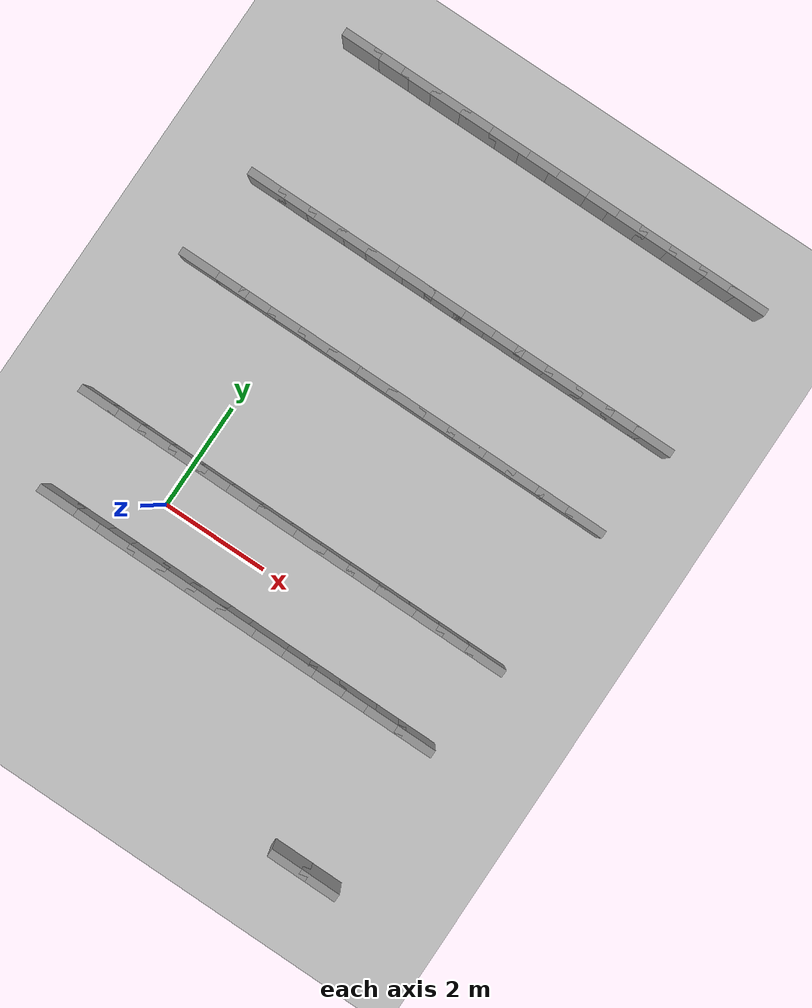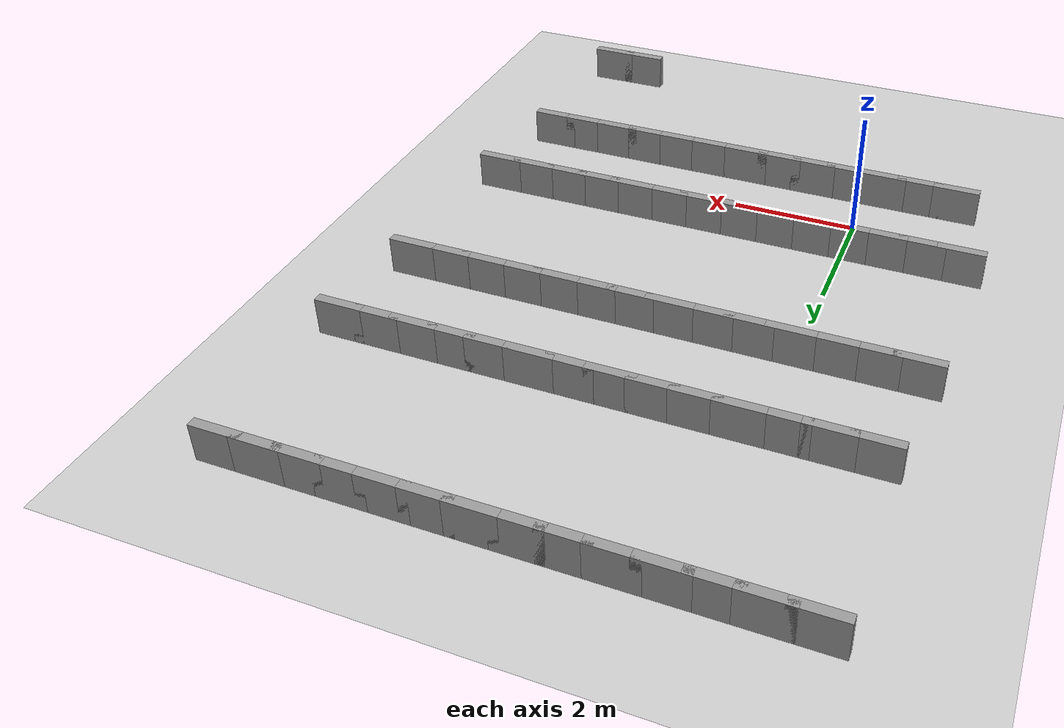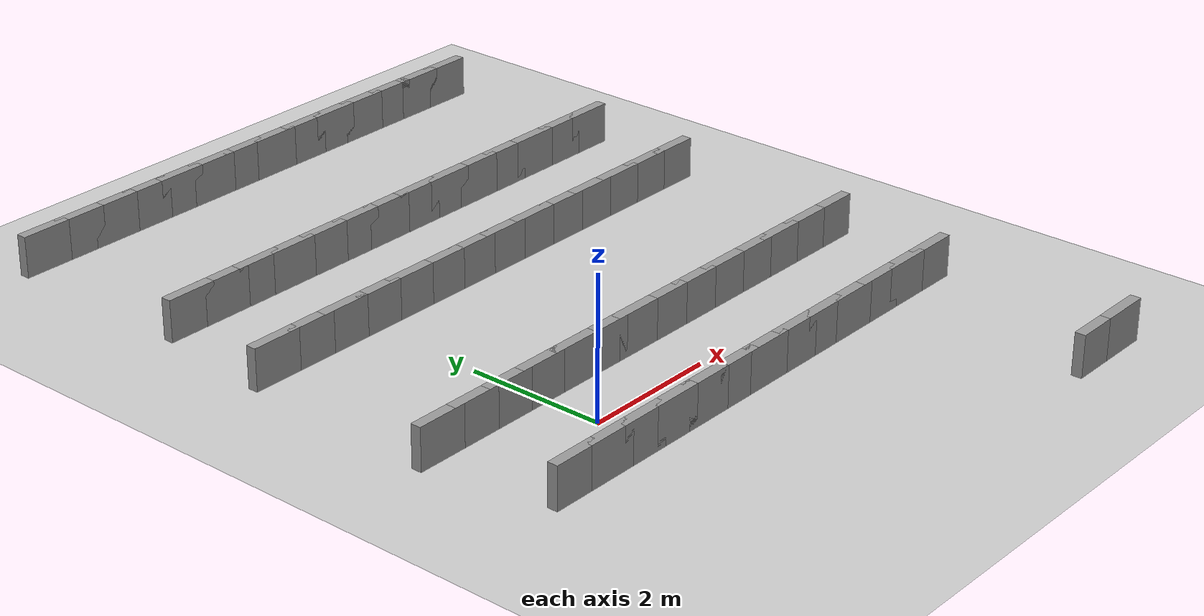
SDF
<sdf version="1.7">
 <world name="default">
  <model name="ground_plane">
   <static>1</static>
   <link name="link">
    <collision name="collision">
     <geometry><plane><normal>0 0 1</normal><size>100 100</size></plane></geometry>
     <surface><friction><ode><mu>100</mu><mu2>50</mu2></ode></friction></surface>
    </collision>
    <visual name="visual">
     <cast_shadows>0</cast_shadows>
     <geometry><plane><normal>0 0 1</normal><size>100 100</size></plane></geometry>
     <material>
      <script><uri>file://media/materials/scripts/gazebo.material</uri><name>Gazebo/Grey</name></script>
     </material>
    </visual>
   </link>
  </model>
  <model name="rand_serp_00">
   <link name="Wall_15">
    <collision name="Wall_15_Collision">
     <geometry><box><size>0.7500 0.1500 0.6000</size></box></geometry>
     <pose>0 0 0.3000 0 -0 0</pose>
    </collision>
    <visual name="Wall_15_Visual">
     <pose>0 0 0.3000 0 -0 0</pose>
     <geometry><box><size>0.7500 0.1500 0.6000</size></box></geometry>
     <material>
      <script><uri>file://media/materials/scripts/gazebo.material</uri><name>Gazebo/Grey</name></script>
      <ambient>1 1 1 1</ambient>
     </material>
    </visual>
    <pose>-1.5433 8.3501 0 0 -0 0.00000</pose>
   </link>
   <link name="Wall_16">
    <collision name="Wall_16_Collision">
     <geometry><box><size>0.7500 0.1500 0.6000</size></box></geometry>
     <pose>0 0 0.3000 0 -0 0</pose>
    </collision>
    <visual name="Wall_16_Visual">
     <pose>0 0 0.3000 0 -0 0</pose>
     <geometry><box><size>0.7500 0.1500 0.6000</size></box></geometry>
     <material>
      <script><uri>file://media/materials/scripts/gazebo.material</uri><name>Gazebo/Grey</name></script>
      <ambient>1 1 1 1</ambient>
     </material>
    </visual>
    <pose>-0.9433 8.3501 0 0 -0 0.00000</pose>
   </link>
   <link name="Wall_17">
    <collision name="Wall_17_Collision">
     <geometry><box><size>0.7500 0.1500 0.6000</size></box></geometry>
     <pose>0 0 0.3000 0 -0 0</pose>
    </collision>
    <visual name="Wall_17_Visual">
     <pose>0 0 0.3000 0 -0 0</pose>
     <geometry><box><size>0.7500 0.1500 0.6000</size></box></geometry>
     <material>
      <script><uri>file://media/materials/scripts/gazebo.material</uri><name>Gazebo/Grey</name></script>
      <ambient>1 1 1 1</ambient>
     </material>
    </visual>
    <pose>-0.3433 8.3501 0 0 -0 0.00000</pose>
   </link>
   <link name="Wall_18">
    <collision name="Wall_18_Collision">
     <geometry><box><size>0.7500 0.1500 0.6000</size></box></geometry>
     <pose>0 0 0.3000 0 -0 0</pose>
    </collision>
    <visual name="Wall_18_Visual">
     <pose>0 0 0.3000 0 -0 0</pose>
     <geometry><box><size>0.7500 0.1500 0.6000</size></box></geometry>
     <material>
      <script><uri>file://media/materials/scripts/gazebo.material</uri><name>Gazebo/Grey</name></script>
      <ambient>1 1 1 1</ambient>
     </material>
    </visual>
    <pose>0.2567 8.3501 0 0 -0 0.00000</pose>
   </link>
   <link name="Wall_19">
    <collision name="Wall_19_Collision">
     <geometry><box><size>0.7500 0.1500 0.6000</size></box></geometry>
     <pose>0 0 0.3000 0 -0 0</pose>
    </collision>
    <visual name="Wall_19_Visual">
     <pose>0 0 0.3000 0 -0 0</pose>
     <geometry><box><size>0.7500 0.1500 0.6000</size></box></geometry>
     <material>
      <script><uri>file://media/materials/scripts/gazebo.material</uri><name>Gazebo/Grey</name></script>
      <ambient>1 1 1 1</ambient>
     </material>
    </visual>
    <pose>0.8567 8.3501 0 0 -0 0.00000</pose>
   </link>
   <link name="Wall_20">
    <collision name="Wall_20_Collision">
     <geometry><box><size>0.7500 0.1500 0.6000</size></box></geometry>
     <pose>0 0 0.3000 0 -0 0</pose>
    </collision>
    <visual name="Wall_20_Visual">
     <pose>0 0 0.3000 0 -0 0</pose>
     <geometry><box><size>0.7500 0.1500 0.6000</size></box></geometry>
     <material>
      <script><uri>file://media/materials/scripts/gazebo.material</uri><name>Gazebo/Grey</name></script>
      <ambient>1 1 1 1</ambient>
     </material>
    </visual>
    <pose>1.4567 8.3501 0 0 -0 0.00000</pose>
   </link>
   <link name="Wall_21">
    <collision name="Wall_21_Collision">
     <geometry><box><size>0.7500 0.1500 0.6000</size></box></geometry>
     <pose>0 0 0.3000 0 -0 0</pose>
    </collision>
    <visual name="Wall_21_Visual">
     <pose>0 0 0.3000 0 -0 0</pose>
     <geometry><box><size>0.7500 0.1500 0.6000</size></box></geometry>
     <material>
      <script><uri>file://media/materials/scripts/gazebo.material</uri><name>Gazebo/Grey</name></script>
      <ambient>1 1 1 1</ambient>
     </material>
    </visual>
    <pose>2.0567 8.3501 0 0 -0 0.00000</pose>
   </link>
   <link name="Wall_22">
    <collision name="Wall_22_Collision">
     <geometry><box><size>0.7500 0.1500 0.6000</size></box></geometry>
     <pose>0 0 0.3000 0 -0 0</pose>
    </collision>
    <visual name="Wall_22_Visual">
     <pose>0 0 0.3000 0 -0 0</pose>
     <geometry><box><size>0.7500 0.1500 0.6000</size></box></geometry>
     <material>
      <script><uri>file://media/materials/scripts/gazebo.material</uri><name>Gazebo/Grey</name></script>
      <ambient>1 1 1 1</ambient>
     </material>
    </visual>
    <pose>2.6567 8.3501 0 0 -0 0.00000</pose>
   </link>
   <link name="Wall_23">
    <collision name="Wall_23_Collision">
     <geometry><box><size>0.7500 0.1500 0.6000</size></box></geometry>
     <pose>0 0 0.3000 0 -0 0</pose>
    </collision>
    <visual name="Wall_23_Visual">
     <pose>0 0 0.3000 0 -0 0</pose>
     <geometry><box><size>0.7500 0.1500 0.6000</size></box></geometry>
     <material>
      <script><uri>file://media/materials/scripts/gazebo.material</uri><name>Gazebo/Grey</name></script>
      <ambient>1 1 1 1</ambient>
     </material>
    </visual>
    <pose>3.2567 8.3501 0 0 -0 0.00000</pose>
   </link>
   <link name="Wall_24">
    <collision name="Wall_24_Collision">
     <geometry><box><size>0.7500 0.1500 0.6000</size></box></geometry>
     <pose>0 0 0.3000 0 -0 0</pose>
    </collision>
    <visual name="Wall_24_Visual">
     <pose>0 0 0.3000 0 -0 0</pose>
     <geometry><box><size>0.7500 0.1500 0.6000</size></box></geometry>
     <material>
      <script><uri>file://media/materials/scripts/gazebo.material</uri><name>Gazebo/Grey</name></script>
      <ambient>1 1 1 1</ambient>
     </material>
    </visual>
    <pose>3.8567 8.3501 0 0 -0 0.00000</pose>
   </link>
   <link name="Wall_25">
    <collision name="Wall_25_Collision">
     <geometry><box><size>0.7500 0.1500 0.6000</size></box></geometry>
     <pose>0 0 0.3000 0 -0 0</pose>
    </collision>
    <visual name="Wall_25_Visual">
     <pose>0 0 0.3000 0 -0 0</pose>
     <geometry><box><size>0.7500 0.1500 0.6000</size></box></geometry>
     <material>
      <script><uri>file://media/materials/scripts/gazebo.material</uri><name>Gazebo/Grey</name></script>
      <ambient>1 1 1 1</ambient>
     </material>
    </visual>
    <pose>4.4567 8.3501 0 0 -0 0.00000</pose>
   </link>
   <link name="Wall_26">
    <collision name="Wall_26_Collision">
     <geometry><box><size>0.7500 0.1500 0.6000</size></box></geometry>
     <pose>0 0 0.3000 0 -0 0</pose>
    </collision>
    <visual name="Wall_26_Visual">
     <pose>0 0 0.3000 0 -0 0</pose>
     <geometry><box><size>0.7500 0.1500 0.6000</size></box></geometry>
     <material>
      <script><uri>file://media/materials/scripts/gazebo.material</uri><name>Gazebo/Grey</name></script>
      <ambient>1 1 1 1</ambient>
     </material>
    </visual>
    <pose>5.0567 8.3501 0 0 -0 0.00000</pose>
   </link>
   <link name="Wall_27">
    <collision name="Wall_27_Collision">
     <geometry><box><size>0.7500 0.1500 0.6000</size></box></geometry>
     <pose>0 0 0.3000 0 -0 0</pose>
    </collision>
    <visual name="Wall_27_Visual">
     <pose>0 0 0.3000 0 -0 0</pose>
     <geometry><box><size>0.7500 0.1500 0.6000</size></box></geometry>
     <material>
      <script><uri>file://media/materials/scripts/gazebo.material</uri><name>Gazebo/Grey</name></script>
      <ambient>1 1 1 1</ambient>
     </material>
    </visual>
    <pose>5.6567 8.3501 0 0 -0 0.00000</pose>
   </link>
   <link name="Wall_28">
    <collision name="Wall_28_Collision">
     <geometry><box><size>0.7500 0.1500 0.6000</size></box></geometry>
     <pose>0 0 0.3000 0 -0 0</pose>
    </collision>
    <visual name="Wall_28_Visual">
     <pose>0 0 0.3000 0 -0 0</pose>
     <geometry><box><size>0.7500 0.1500 0.6000</size></box></geometry>
     <material>
      <script><uri>file://media/materials/scripts/gazebo.material</uri><name>Gazebo/Grey</name></script>
      <ambient>1 1 1 1</ambient>
     </material>
    </visual>
    <pose>6.2567 8.3501 0 0 -0 0.00000</pose>
   </link>
   <link name="Wall_61">
    <collision name="Wall_61_Collision">
     <geometry><box><size>0.7500 0.1500 0.6000</size></box></geometry>
     <pose>0 0 0.3000 0 -0 0</pose>
    </collision>
    <visual name="Wall_61_Visual">
     <pose>0 0 0.3000 0 -0 0</pose>
     <geometry><box><size>0.7500 0.1500 0.6000</size></box></geometry>
     <material>
      <script><uri>file://media/materials/scripts/gazebo.material</uri><name>Gazebo/Grey</name></script>
      <ambient>1 1 1 1</ambient>
     </material>
    </visual>
    <pose>5.9596 0.8823 0 0 -0 3.14159</pose>
   </link>
   <link name="Wall_62">
    <collision name="Wall_62_Collision">
     <geometry><box><size>0.7500 0.1500 0.6000</size></box></geometry>
     <pose>0 0 0.3000 0 -0 0</pose>
    </collision>
    <visual name="Wall_62_Visual">
     <pose>0 0 0.3000 0 -0 0</pose>
     <geometry><box><size>0.7500 0.1500 0.6000</size></box></geometry>
     <material>
      <script><uri>file://media/materials/scripts/gazebo.material</uri><name>Gazebo/Grey</name></script>
      <ambient>1 1 1 1</ambient>
     </material>
    </visual>
    <pose>5.3596 0.8823 0 0 -0 3.14159</pose>
   </link>
   <link name="Wall_63">
    <collision name="Wall_63_Collision">
     <geometry><box><size>0.7500 0.1500 0.6000</size></box></geometry>
     <pose>0 0 0.3000 0 -0 0</pose>
    </collision>
    <visual name="Wall_63_Visual">
     <pose>0 0 0.3000 0 -0 0</pose>
     <geometry><box><size>0.7500 0.1500 0.6000</size></box></geometry>
     <material>
      <script><uri>file://media/materials/scripts/gazebo.material</uri><name>Gazebo/Grey</name></script>
      <ambient>1 1 1 1</ambient>
     </material>
    </visual>
    <pose>4.7596 0.8823 0 0 -0 3.14159</pose>
   </link>
   <link name="Wall_64">
    <collision name="Wall_64_Collision">
     <geometry><box><size>0.7500 0.1500 0.6000</size></box></geometry>
     <pose>0 0 0.3000 0 -0 0</pose>
    </collision>
    <visual name="Wall_64_Visual">
     <pose>0 0 0.3000 0 -0 0</pose>
     <geometry><box><size>0.7500 0.1500 0.6000</size></box></geometry>
     <material>
      <script><uri>file://media/materials/scripts/gazebo.material</uri><name>Gazebo/Grey</name></script>
      <ambient>1 1 1 1</ambient>
     </material>
    </visual>
    <pose>4.1596 0.8823 0 0 -0 3.14159</pose>
   </link>
   <link name="Wall_65">
    <collision name="Wall_65_Collision">
     <geometry><box><size>0.7500 0.1500 0.6000</size></box></geometry>
     <pose>0 0 0.3000 0 -0 0</pose>
    </collision>
    <visual name="Wall_65_Visual">
     <pose>0 0 0.3000 0 -0 0</pose>
     <geometry><box><size>0.7500 0.1500 0.6000</size></box></geometry>
     <material>
      <script><uri>file://media/materials/scripts/gazebo.material</uri><name>Gazebo/Grey</name></script>
      <ambient>1 1 1 1</ambient>
     </material>
    </visual>
    <pose>3.5596 0.8823 0 0 -0 3.14159</pose>
   </link>
   <link name="Wall_66">
    <collision name="Wall_66_Collision">
     <geometry><box><size>0.7500 0.1500 0.6000</size></box></geometry>
     <pose>0 0 0.3000 0 -0 0</pose>
    </collision>
    <visual name="Wall_66_Visual">
     <pose>0 0 0.3000 0 -0 0</pose>
     <geometry><box><size>0.7500 0.1500 0.6000</size></box></geometry>
     <material>
      <script><uri>file://media/materials/scripts/gazebo.material</uri><name>Gazebo/Grey</name></script>
      <ambient>1 1 1 1</ambient>
     </material>
    </visual>
    <pose>2.9596 0.8823 0 0 -0 3.14159</pose>
   </link>
   <link name="Wall_67">
    <collision name="Wall_67_Collision">
     <geometry><box><size>0.7500 0.1500 0.6000</size></box></geometry>
     <pose>0 0 0.3000 0 -0 0</pose>
    </collision>
    <visual name="Wall_67_Visual">
     <pose>0 0 0.3000 0 -0 0</pose>
     <geometry><box><size>0.7500 0.1500 0.6000</size></box></geometry>
     <material>
      <script><uri>file://media/materials/scripts/gazebo.material</uri><name>Gazebo/Grey</name></script>
      <ambient>1 1 1 1</ambient>
     </material>
    </visual>
    <pose>2.3596 0.8823 0 0 -0 3.14159</pose>
   </link>
   <link name="Wall_68">
    <collision name="Wall_68_Collision">
     <geometry><box><size>0.7500 0.1500 0.6000</size></box></geometry>
     <pose>0 0 0.3000 0 -0 0</pose>
    </collision>
    <visual name="Wall_68_Visual">
     <pose>0 0 0.3000 0 -0 0</pose>
     <geometry><box><size>0.7500 0.1500 0.6000</size></box></geometry>
     <material>
      <script><uri>file://media/materials/scripts/gazebo.material</uri><name>Gazebo/Grey</name></script>
      <ambient>1 1 1 1</ambient>
     </material>
    </visual>
    <pose>1.7596 0.8823 0 0 -0 3.14159</pose>
   </link>
   <link name="Wall_69">
    <collision name="Wall_69_Collision">
     <geometry><box><size>0.7500 0.1500 0.6000</size></box></geometry>
     <pose>0 0 0.3000 0 -0 0</pose>
    </collision>
    <visual name="Wall_69_Visual">
     <pose>0 0 0.3000 0 -0 0</pose>
     <geometry><box><size>0.7500 0.1500 0.6000</size></box></geometry>
     <material>
      <script><uri>file://media/materials/scripts/gazebo.material</uri><name>Gazebo/Grey</name></script>
      <ambient>1 1 1 1</ambient>
     </material>
    </visual>
    <pose>1.1596 0.8823 0 0 -0 3.14159</pose>
   </link>
   <link name="Wall_70">
    <collision name="Wall_70_Collision">
     <geometry><box><size>0.7500 0.1500 0.6000</size></box></geometry>
     <pose>0 0 0.3000 0 -0 0</pose>
    </collision>
    <visual name="Wall_70_Visual">
     <pose>0 0 0.3000 0 -0 0</pose>
     <geometry><box><size>0.7500 0.1500 0.6000</size></box></geometry>
     <material>
      <script><uri>file://media/materials/scripts/gazebo.material</uri><name>Gazebo/Grey</name></script>
      <ambient>1 1 1 1</ambient>
     </material>
    </visual>
    <pose>0.5596 0.8823 0 0 -0 3.14159</pose>
   </link>
   <link name="Wall_71">
    <collision name="Wall_71_Collision">
     <geometry><box><size>0.7500 0.1500 0.6000</size></box></geometry>
     <pose>0 0 0.3000 0 -0 0</pose>
    </collision>
    <visual name="Wall_71_Visual">
     <pose>0 0 0.3000 0 -0 0</pose>
     <geometry><box><size>0.7500 0.1500 0.6000</size></box></geometry>
     <material>
      <script><uri>file://media/materials/scripts/gazebo.material</uri><name>Gazebo/Grey</name></script>
      <ambient>1 1 1 1</ambient>
     </material>
    </visual>
    <pose>-0.0404 0.8823 0 0 -0 3.14159</pose>
   </link>
   <link name="Wall_72">
    <collision name="Wall_72_Collision">
     <geometry><box><size>0.7500 0.1500 0.6000</size></box></geometry>
     <pose>0 0 0.3000 0 -0 0</pose>
    </collision>
    <visual name="Wall_72_Visual">
     <pose>0 0 0.3000 0 -0 0</pose>
     <geometry><box><size>0.7500 0.1500 0.6000</size></box></geometry>
     <material>
      <script><uri>file://media/materials/scripts/gazebo.material</uri><name>Gazebo/Grey</name></script>
      <ambient>1 1 1 1</ambient>
     </material>
    </visual>
    <pose>-0.6404 0.8823 0 0 -0 3.14159</pose>
   </link>
   <link name="Wall_73">
    <collision name="Wall_73_Collision">
     <geometry><box><size>0.7500 0.1500 0.6000</size></box></geometry>
     <pose>0 0 0.3000 0 -0 0</pose>
    </collision>
    <visual name="Wall_73_Visual">
     <pose>0 0 0.3000 0 -0 0</pose>
     <geometry><box><size>0.7500 0.1500 0.6000</size></box></geometry>
     <material>
      <script><uri>file://media/materials/scripts/gazebo.material</uri><name>Gazebo/Grey</name></script>
      <ambient>1 1 1 1</ambient>
     </material>
    </visual>
    <pose>-1.2404 0.8823 0 0 -0 3.14159</pose>
   </link>
   <link name="Wall_74">
    <collision name="Wall_74_Collision">
     <geometry><box><size>0.7500 0.1500 0.6000</size></box></geometry>
     <pose>0 0 0.3000 0 -0 0</pose>
    </collision>
    <visual name="Wall_74_Visual">
     <pose>0 0 0.3000 0 -0 0</pose>
     <geometry><box><size>0.7500 0.1500 0.6000</size></box></geometry>
     <material>
      <script><uri>file://media/materials/scripts/gazebo.material</uri><name>Gazebo/Grey</name></script>
      <ambient>1 1 1 1</ambient>
     </material>
    </visual>
    <pose>-1.8404 0.8823 0 0 -0 3.14159</pose>
   </link>
   <link name="Wall_107">
    <collision name="Wall_107_Collision">
     <geometry><box><size>0.7500 0.1500 0.6000</size></box></geometry>
     <pose>0 0 0.3000 0 -0 0</pose>
    </collision>
    <visual name="Wall_107_Visual">
     <pose>0 0 0.3000 0 -0 0</pose>
     <geometry><box><size>0.7500 0.1500 0.6000</size></box></geometry>
     <material>
      <script><uri>file://media/materials/scripts/gazebo.material</uri><name>Gazebo/Grey</name></script>
      <ambient>1 1 1 1</ambient>
     </material>
    </visual>
    <pose>-1.4747 -0.8823 0 0 -0 0.00000</pose>
   </link>
   <link name="Wall_108">
    <collision name="Wall_108_Collision">
     <geometry><box><size>0.7500 0.1500 0.6000</size></box></geometry>
     <pose>0 0 0.3000 0 -0 0</pose>
    </collision>
    <visual name="Wall_108_Visual">
     <pose>0 0 0.3000 0 -0 0</pose>
     <geometry><box><size>0.7500 0.1500 0.6000</size></box></geometry>
     <material>
      <script><uri>file://media/materials/scripts/gazebo.material</uri><name>Gazebo/Grey</name></script>
      <ambient>1 1 1 1</ambient>
     </material>
    </visual>
    <pose>-0.8747 -0.8823 0 0 -0 0.00000</pose>
   </link>
   <link name="Wall_109">
    <collision name="Wall_109_Collision">
     <geometry><box><size>0.7500 0.1500 0.6000</size></box></geometry>
     <pose>0 0 0.3000 0 -0 0</pose>
    </collision>
    <visual name="Wall_109_Visual">
     <pose>0 0 0.3000 0 -0 0</pose>
     <geometry><box><size>0.7500 0.1500 0.6000</size></box></geometry>
     <material>
      <script><uri>file://media/materials/scripts/gazebo.material</uri><name>Gazebo/Grey</name></script>
      <ambient>1 1 1 1</ambient>
     </material>
    </visual>
    <pose>-0.2747 -0.8823 0 0 -0 0.00000</pose>
   </link>
   <link name="Wall_110">
    <collision name="Wall_110_Collision">
     <geometry><box><size>0.7500 0.1500 0.6000</size></box></geometry>
     <pose>0 0 0.3000 0 -0 0</pose>
    </collision>
    <visual name="Wall_110_Visual">
     <pose>0 0 0.3000 0 -0 0</pose>
     <geometry><box><size>0.7500 0.1500 0.6000</size></box></geometry>
     <material>
      <script><uri>file://media/materials/scripts/gazebo.material</uri><name>Gazebo/Grey</name></script>
      <ambient>1 1 1 1</ambient>
     </material>
    </visual>
    <pose>0.3253 -0.8823 0 0 -0 0.00000</pose>
   </link>
   <link name="Wall_111">
    <collision name="Wall_111_Collision">
     <geometry><box><size>0.7500 0.1500 0.6000</size></box></geometry>
     <pose>0 0 0.3000 0 -0 0</pose>
    </collision>
    <visual name="Wall_111_Visual">
     <pose>0 0 0.3000 0 -0 0</pose>
     <geometry><box><size>0.7500 0.1500 0.6000</size></box></geometry>
     <material>
      <script><uri>file://media/materials/scripts/gazebo.material</uri><name>Gazebo/Grey</name></script>
      <ambient>1 1 1 1</ambient>
     </material>
    </visual>
    <pose>0.9253 -0.8823 0 0 -0 0.00000</pose>
   </link>
   <link name="Wall_112">
    <collision name="Wall_112_Collision">
     <geometry><box><size>0.7500 0.1500 0.6000</size></box></geometry>
     <pose>0 0 0.3000 0 -0 0</pose>
    </collision>
    <visual name="Wall_112_Visual">
     <pose>0 0 0.3000 0 -0 0</pose>
     <geometry><box><size>0.7500 0.1500 0.6000</size></box></geometry>
     <material>
      <script><uri>file://media/materials/scripts/gazebo.material</uri><name>Gazebo/Grey</name></script>
      <ambient>1 1 1 1</ambient>
     </material>
    </visual>
    <pose>1.5253 -0.8823 0 0 -0 0.00000</pose>
   </link>
   <link name="Wall_113">
    <collision name="Wall_113_Collision">
     <geometry><box><size>0.7500 0.1500 0.6000</size></box></geometry>
     <pose>0 0 0.3000 0 -0 0</pose>
    </collision>
    <visual name="Wall_113_Visual">
     <pose>0 0 0.3000 0 -0 0</pose>
     <geometry><box><size>0.7500 0.1500 0.6000</size></box></geometry>
     <material>
      <script><uri>file://media/materials/scripts/gazebo.material</uri><name>Gazebo/Grey</name></script>
      <ambient>1 1 1 1</ambient>
     </material>
    </visual>
    <pose>2.1253 -0.8823 0 0 -0 0.00000</pose>
   </link>
   <link name="Wall_114">
    <collision name="Wall_114_Collision">
     <geometry><box><size>0.7500 0.1500 0.6000</size></box></geometry>
     <pose>0 0 0.3000 0 -0 0</pose>
    </collision>
    <visual name="Wall_114_Visual">
     <pose>0 0 0.3000 0 -0 0</pose>
     <geometry><box><size>0.7500 0.1500 0.6000</size></box></geometry>
     <material>
      <script><uri>file://media/materials/scripts/gazebo.material</uri><name>Gazebo/Grey</name></script>
      <ambient>1 1 1 1</ambient>
     </material>
    </visual>
    <pose>2.7253 -0.8823 0 0 -0 0.00000</pose>
   </link>
   <link name="Wall_115">
    <collision name="Wall_115_Collision">
     <geometry><box><size>0.7500 0.1500 0.6000</size></box></geometry>
     <pose>0 0 0.3000 0 -0 0</pose>
    </collision>
    <visual name="Wall_115_Visual">
     <pose>0 0 0.3000 0 -0 0</pose>
     <geometry><box><size>0.7500 0.1500 0.6000</size></box></geometry>
     <material>
      <script><uri>file://media/materials/scripts/gazebo.material</uri><name>Gazebo/Grey</name></script>
      <ambient>1 1 1 1</ambient>
     </material>
    </visual>
    <pose>3.3253 -0.8823 0 0 -0 0.00000</pose>
   </link>
   <link name="Wall_116">
    <collision name="Wall_116_Collision">
     <geometry><box><size>0.7500 0.1500 0.6000</size></box></geometry>
     <pose>0 0 0.3000 0 -0 0</pose>
    </collision>
    <visual name="Wall_116_Visual">
     <pose>0 0 0.3000 0 -0 0</pose>
     <geometry><box><size>0.7500 0.1500 0.6000</size></box></geometry>
     <material>
      <script><uri>file://media/materials/scripts/gazebo.material</uri><name>Gazebo/Grey</name></script>
      <ambient>1 1 1 1</ambient>
     </material>
    </visual>
    <pose>3.9253 -0.8823 0 0 -0 0.00000</pose>
   </link>
   <link name="Wall_117">
    <collision name="Wall_117_Collision">
     <geometry><box><size>0.7500 0.1500 0.6000</size></box></geometry>
     <pose>0 0 0.3000 0 -0 0</pose>
    </collision>
    <visual name="Wall_117_Visual">
     <pose>0 0 0.3000 0 -0 0</pose>
     <geometry><box><size>0.7500 0.1500 0.6000</size></box></geometry>
     <material>
      <script><uri>file://media/materials/scripts/gazebo.material</uri><name>Gazebo/Grey</name></script>
      <ambient>1 1 1 1</ambient>
     </material>
    </visual>
    <pose>4.5253 -0.8823 0 0 -0 0.00000</pose>
   </link>
   <link name="Wall_118">
    <collision name="Wall_118_Collision">
     <geometry><box><size>0.7500 0.1500 0.6000</size></box></geometry>
     <pose>0 0 0.3000 0 -0 0</pose>
    </collision>
    <visual name="Wall_118_Visual">
     <pose>0 0 0.3000 0 -0 0</pose>
     <geometry><box><size>0.7500 0.1500 0.6000</size></box></geometry>
     <material>
      <script><uri>file://media/materials/scripts/gazebo.material</uri><name>Gazebo/Grey</name></script>
      <ambient>1 1 1 1</ambient>
     </material>
    </visual>
    <pose>5.1253 -0.8823 0 0 -0 0.00000</pose>
   </link>
   <link name="Wall_119">
    <collision name="Wall_119_Collision">
     <geometry><box><size>0.7500 0.1500 0.6000</size></box></geometry>
     <pose>0 0 0.3000 0 -0 0</pose>
    </collision>
    <visual name="Wall_119_Visual">
     <pose>0 0 0.3000 0 -0 0</pose>
     <geometry><box><size>0.7500 0.1500 0.6000</size></box></geometry>
     <material>
      <script><uri>file://media/materials/scripts/gazebo.material</uri><name>Gazebo/Grey</name></script>
      <ambient>1 1 1 1</ambient>
     </material>
    </visual>
    <pose>5.7253 -0.8823 0 0 -0 0.00000</pose>
   </link>
   <link name="Wall_197">
    <collision name="Wall_197_Collision">
     <geometry><box><size>0.7500 0.1500 0.6000</size></box></geometry>
     <pose>0 0 0.3000 0 -0 0</pose>
    </collision>
    <visual name="Wall_197_Visual">
     <pose>0 0 0.3000 0 -0 0</pose>
     <geometry><box><size>0.7500 0.1500 0.6000</size></box></geometry>
     <material>
      <script><uri>file://media/materials/scripts/gazebo.material</uri><name>Gazebo/Grey</name></script>
      <ambient>1 1 1 1</ambient>
     </material>
    </visual>
    <pose>-1.5433 5.4985 0 0 -0 0.00000</pose>
   </link>
   <link name="Wall_198">
    <collision name="Wall_198_Collision">
     <geometry><box><size>0.7500 0.1500 0.6000</size></box></geometry>
     <pose>0 0 0.3000 0 -0 0</pose>
    </collision>
    <visual name="Wall_198_Visual">
     <pose>0 0 0.3000 0 -0 0</pose>
     <geometry><box><size>0.7500 0.1500 0.6000</size></box></geometry>
     <material>
      <script><uri>file://media/materials/scripts/gazebo.material</uri><name>Gazebo/Grey</name></script>
      <ambient>1 1 1 1</ambient>
     </material>
    </visual>
    <pose>-0.9433 5.4985 0 0 -0 0.00000</pose>
   </link>
   <link name="Wall_199">
    <collision name="Wall_199_Collision">
     <geometry><box><size>0.7500 0.1500 0.6000</size></box></geometry>
     <pose>0 0 0.3000 0 -0 0</pose>
    </collision>
    <visual name="Wall_199_Visual">
     <pose>0 0 0.3000 0 -0 0</pose>
     <geometry><box><size>0.7500 0.1500 0.6000</size></box></geometry>
     <material>
      <script><uri>file://media/materials/scripts/gazebo.material</uri><name>Gazebo/Grey</name></script>
      <ambient>1 1 1 1</ambient>
     </material>
    </visual>
    <pose>-0.3433 5.4985 0 0 -0 0.00000</pose>
   </link>
   <link name="Wall_200">
    <collision name="Wall_200_Collision">
     <geometry><box><size>0.7500 0.1500 0.6000</size></box></geometry>
     <pose>0 0 0.3000 0 -0 0</pose>
    </collision>
    <visual name="Wall_200_Visual">
     <pose>0 0 0.3000 0 -0 0</pose>
     <geometry><box><size>0.7500 0.1500 0.6000</size></box></geometry>
     <material>
      <script><uri>file://media/materials/scripts/gazebo.material</uri><name>Gazebo/Grey</name></script>
      <ambient>1 1 1 1</ambient>
     </material>
    </visual>
    <pose>0.2567 5.4985 0 0 -0 0.00000</pose>
   </link>
   <link name="Wall_201">
    <collision name="Wall_201_Collision">
     <geometry><box><size>0.7500 0.1500 0.6000</size></box></geometry>
     <pose>0 0 0.3000 0 -0 0</pose>
    </collision>
    <visual name="Wall_201_Visual">
     <pose>0 0 0.3000 0 -0 0</pose>
     <geometry><box><size>0.7500 0.1500 0.6000</size></box></geometry>
     <material>
      <script><uri>file://media/materials/scripts/gazebo.material</uri><name>Gazebo/Grey</name></script>
      <ambient>1 1 1 1</ambient>
     </material>
    </visual>
    <pose>0.8567 5.4985 0 0 -0 0.00000</pose>
   </link>
   <link name="Wall_202">
    <collision name="Wall_202_Collision">
     <geometry><box><size>0.7500 0.1500 0.6000</size></box></geometry>
     <pose>0 0 0.3000 0 -0 0</pose>
    </collision>
    <visual name="Wall_202_Visual">
     <pose>0 0 0.3000 0 -0 0</pose>
     <geometry><box><size>0.7500 0.1500 0.6000</size></box></geometry>
     <material>
      <script><uri>file://media/materials/scripts/gazebo.material</uri><name>Gazebo/Grey</name></script>
      <ambient>1 1 1 1</ambient>
     </material>
    </visual>
    <pose>1.4567 5.4985 0 0 -0 0.00000</pose>
   </link>
   <link name="Wall_203">
    <collision name="Wall_203_Collision">
     <geometry><box><size>0.7500 0.1500 0.6000</size></box></geometry>
     <pose>0 0 0.3000 0 -0 0</pose>
    </collision>
    <visual name="Wall_203_Visual">
     <pose>0 0 0.3000 0 -0 0</pose>
     <geometry><box><size>0.7500 0.1500 0.6000</size></box></geometry>
     <material>
      <script><uri>file://media/materials/scripts/gazebo.material</uri><name>Gazebo/Grey</name></script>
      <ambient>1 1 1 1</ambient>
     </material>
    </visual>
    <pose>2.0567 5.4985 0 0 -0 0.00000</pose>
   </link>
   <link name="Wall_204">
    <collision name="Wall_204_Collision">
     <geometry><box><size>0.7500 0.1500 0.6000</size></box></geometry>
     <pose>0 0 0.3000 0 -0 0</pose>
    </collision>
    <visual name="Wall_204_Visual">
     <pose>0 0 0.3000 0 -0 0</pose>
     <geometry><box><size>0.7500 0.1500 0.6000</size></box></geometry>
     <material>
      <script><uri>file://media/materials/scripts/gazebo.material</uri><name>Gazebo/Grey</name></script>
      <ambient>1 1 1 1</ambient>
     </material>
    </visual>
    <pose>2.6567 5.4985 0 0 -0 0.00000</pose>
   </link>
   <link name="Wall_205">
    <collision name="Wall_205_Collision">
     <geometry><box><size>0.7500 0.1500 0.6000</size></box></geometry>
     <pose>0 0 0.3000 0 -0 0</pose>
    </collision>
    <visual name="Wall_205_Visual">
     <pose>0 0 0.3000 0 -0 0</pose>
     <geometry><box><size>0.7500 0.1500 0.6000</size></box></geometry>
     <material>
      <script><uri>file://media/materials/scripts/gazebo.material</uri><name>Gazebo/Grey</name></script>
      <ambient>1 1 1 1</ambient>
     </material>
    </visual>
    <pose>3.2567 5.4985 0 0 -0 0.00000</pose>
   </link>
   <link name="Wall_206">
    <collision name="Wall_206_Collision">
     <geometry><box><size>0.7500 0.1500 0.6000</size></box></geometry>
     <pose>0 0 0.3000 0 -0 0</pose>
    </collision>
    <visual name="Wall_206_Visual">
     <pose>0 0 0.3000 0 -0 0</pose>
     <geometry><box><size>0.7500 0.1500 0.6000</size></box></geometry>
     <material>
      <script><uri>file://media/materials/scripts/gazebo.material</uri><name>Gazebo/Grey</name></script>
      <ambient>1 1 1 1</ambient>
     </material>
    </visual>
    <pose>3.8567 5.4985 0 0 -0 0.00000</pose>
   </link>
   <link name="Wall_207">
    <collision name="Wall_207_Collision">
     <geometry><box><size>0.7500 0.1500 0.6000</size></box></geometry>
     <pose>0 0 0.3000 0 -0 0</pose>
    </collision>
    <visual name="Wall_207_Visual">
     <pose>0 0 0.3000 0 -0 0</pose>
     <geometry><box><size>0.7500 0.1500 0.6000</size></box></geometry>
     <material>
      <script><uri>file://media/materials/scripts/gazebo.material</uri><name>Gazebo/Grey</name></script>
      <ambient>1 1 1 1</ambient>
     </material>
    </visual>
    <pose>4.4567 5.4985 0 0 -0 0.00000</pose>
   </link>
   <link name="Wall_208">
    <collision name="Wall_208_Collision">
     <geometry><box><size>0.7500 0.1500 0.6000</size></box></geometry>
     <pose>0 0 0.3000 0 -0 0</pose>
    </collision>
    <visual name="Wall_208_Visual">
     <pose>0 0 0.3000 0 -0 0</pose>
     <geometry><box><size>0.7500 0.1500 0.6000</size></box></geometry>
     <material>
      <script><uri>file://media/materials/scripts/gazebo.material</uri><name>Gazebo/Grey</name></script>
      <ambient>1 1 1 1</ambient>
     </material>
    </visual>
    <pose>5.0567 5.4985 0 0 -0 0.00000</pose>
   </link>
   <link name="Wall_209">
    <collision name="Wall_209_Collision">
     <geometry><box><size>0.7500 0.1500 0.6000</size></box></geometry>
     <pose>0 0 0.3000 0 -0 0</pose>
    </collision>
    <visual name="Wall_209_Visual">
     <pose>0 0 0.3000 0 -0 0</pose>
     <geometry><box><size>0.7500 0.1500 0.6000</size></box></geometry>
     <material>
      <script><uri>file://media/materials/scripts/gazebo.material</uri><name>Gazebo/Grey</name></script>
      <ambient>1 1 1 1</ambient>
     </material>
    </visual>
    <pose>5.6567 5.4985 0 0 -0 0.00000</pose>
   </link>
   <link name="Wall_210">
    <collision name="Wall_210_Collision">
     <geometry><box><size>0.7500 0.1500 0.6000</size></box></geometry>
     <pose>0 0 0.3000 0 -0 0</pose>
    </collision>
    <visual name="Wall_210_Visual">
     <pose>0 0 0.3000 0 -0 0</pose>
     <geometry><box><size>0.7500 0.1500 0.6000</size></box></geometry>
     <material>
      <script><uri>file://media/materials/scripts/gazebo.material</uri><name>Gazebo/Grey</name></script>
      <ambient>1 1 1 1</ambient>
     </material>
    </visual>
    <pose>6.2567 5.4985 0 0 -0 0.00000</pose>
   </link>
   <link name="Wall_228">
    <collision name="Wall_228_Collision">
     <geometry><box><size>0.7500 0.1500 0.6000</size></box></geometry>
     <pose>0 0 0.3000 0 -0 0</pose>
    </collision>
    <visual name="Wall_228_Visual">
     <pose>0 0 0.3000 0 -0 0</pose>
     <geometry><box><size>0.7500 0.1500 0.6000</size></box></geometry>
     <material>
      <script><uri>file://media/materials/scripts/gazebo.material</uri><name>Gazebo/Grey</name></script>
      <ambient>1 1 1 1</ambient>
     </material>
    </visual>
    <pose>6.0584 3.7339 0 0 -0 3.14159</pose>
   </link>
   <link name="Wall_229">
    <collision name="Wall_229_Collision">
     <geometry><box><size>0.7500 0.1500 0.6000</size></box></geometry>
     <pose>0 0 0.3000 0 -0 0</pose>
    </collision>
    <visual name="Wall_229_Visual">
     <pose>0 0 0.3000 0 -0 0</pose>
     <geometry><box><size>0.7500 0.1500 0.6000</size></box></geometry>
     <material>
      <script><uri>file://media/materials/scripts/gazebo.material</uri><name>Gazebo/Grey</name></script>
      <ambient>1 1 1 1</ambient>
     </material>
    </visual>
    <pose>5.4584 3.7339 0 0 -0 3.14159</pose>
   </link>
   <link name="Wall_230">
    <collision name="Wall_230_Collision">
     <geometry><box><size>0.7500 0.1500 0.6000</size></box></geometry>
     <pose>0 0 0.3000 0 -0 0</pose>
    </collision>
    <visual name="Wall_230_Visual">
     <pose>0 0 0.3000 0 -0 0</pose>
     <geometry><box><size>0.7500 0.1500 0.6000</size></box></geometry>
     <material>
      <script><uri>file://media/materials/scripts/gazebo.material</uri><name>Gazebo/Grey</name></script>
      <ambient>1 1 1 1</ambient>
     </material>
    </visual>
    <pose>4.8584 3.7339 0 0 -0 3.14159</pose>
   </link>
   <link name="Wall_231">
    <collision name="Wall_231_Collision">
     <geometry><box><size>0.7500 0.1500 0.6000</size></box></geometry>
     <pose>0 0 0.3000 0 -0 0</pose>
    </collision>
    <visual name="Wall_231_Visual">
     <pose>0 0 0.3000 0 -0 0</pose>
     <geometry><box><size>0.7500 0.1500 0.6000</size></box></geometry>
     <material>
      <script><uri>file://media/materials/scripts/gazebo.material</uri><name>Gazebo/Grey</name></script>
      <ambient>1 1 1 1</ambient>
     </material>
    </visual>
    <pose>4.2584 3.7339 0 0 -0 3.14159</pose>
   </link>
   <link name="Wall_232">
    <collision name="Wall_232_Collision">
     <geometry><box><size>0.7500 0.1500 0.6000</size></box></geometry>
     <pose>0 0 0.3000 0 -0 0</pose>
    </collision>
    <visual name="Wall_232_Visual">
     <pose>0 0 0.3000 0 -0 0</pose>
     <geometry><box><size>0.7500 0.1500 0.6000</size></box></geometry>
     <material>
      <script><uri>file://media/materials/scripts/gazebo.material</uri><name>Gazebo/Grey</name></script>
      <ambient>1 1 1 1</ambient>
     </material>
    </visual>
    <pose>3.6584 3.7339 0 0 -0 3.14159</pose>
   </link>
   <link name="Wall_233">
    <collision name="Wall_233_Collision">
     <geometry><box><size>0.7500 0.1500 0.6000</size></box></geometry>
     <pose>0 0 0.3000 0 -0 0</pose>
    </collision>
    <visual name="Wall_233_Visual">
     <pose>0 0 0.3000 0 -0 0</pose>
     <geometry><box><size>0.7500 0.1500 0.6000</size></box></geometry>
     <material>
      <script><uri>file://media/materials/scripts/gazebo.material</uri><name>Gazebo/Grey</name></script>
      <ambient>1 1 1 1</ambient>
     </material>
    </visual>
    <pose>3.0584 3.7339 0 0 -0 3.14159</pose>
   </link>
   <link name="Wall_234">
    <collision name="Wall_234_Collision">
     <geometry><box><size>0.7500 0.1500 0.6000</size></box></geometry>
     <pose>0 0 0.3000 0 -0 0</pose>
    </collision>
    <visual name="Wall_234_Visual">
     <pose>0 0 0.3000 0 -0 0</pose>
     <geometry><box><size>0.7500 0.1500 0.6000</size></box></geometry>
     <material>
      <script><uri>file://media/materials/scripts/gazebo.material</uri><name>Gazebo/Grey</name></script>
      <ambient>1 1 1 1</ambient>
     </material>
    </visual>
    <pose>2.4584 3.7339 0 0 -0 3.14159</pose>
   </link>
   <link name="Wall_235">
    <collision name="Wall_235_Collision">
     <geometry><box><size>0.7500 0.1500 0.6000</size></box></geometry>
     <pose>0 0 0.3000 0 -0 0</pose>
    </collision>
    <visual name="Wall_235_Visual">
     <pose>0 0 0.3000 0 -0 0</pose>
     <geometry><box><size>0.7500 0.1500 0.6000</size></box></geometry>
     <material>
      <script><uri>file://media/materials/scripts/gazebo.material</uri><name>Gazebo/Grey</name></script>
      <ambient>1 1 1 1</ambient>
     </material>
    </visual>
    <pose>1.8584 3.7339 0 0 -0 3.14159</pose>
   </link>
   <link name="Wall_236">
    <collision name="Wall_236_Collision">
     <geometry><box><size>0.7500 0.1500 0.6000</size></box></geometry>
     <pose>0 0 0.3000 0 -0 0</pose>
    </collision>
    <visual name="Wall_236_Visual">
     <pose>0 0 0.3000 0 -0 0</pose>
     <geometry><box><size>0.7500 0.1500 0.6000</size></box></geometry>
     <material>
      <script><uri>file://media/materials/scripts/gazebo.material</uri><name>Gazebo/Grey</name></script>
      <ambient>1 1 1 1</ambient>
     </material>
    </visual>
    <pose>1.2584 3.7339 0 0 -0 3.14159</pose>
   </link>
   <link name="Wall_237">
    <collision name="Wall_237_Collision">
     <geometry><box><size>0.7500 0.1500 0.6000</size></box></geometry>
     <pose>0 0 0.3000 0 -0 0</pose>
    </collision>
    <visual name="Wall_237_Visual">
     <pose>0 0 0.3000 0 -0 0</pose>
     <geometry><box><size>0.7500 0.1500 0.6000</size></box></geometry>
     <material>
      <script><uri>file://media/materials/scripts/gazebo.material</uri><name>Gazebo/Grey</name></script>
      <ambient>1 1 1 1</ambient>
     </material>
    </visual>
    <pose>0.6584 3.7339 0 0 -0 3.14159</pose>
   </link>
   <link name="Wall_238">
    <collision name="Wall_238_Collision">
     <geometry><box><size>0.7500 0.1500 0.6000</size></box></geometry>
     <pose>0 0 0.3000 0 -0 0</pose>
    </collision>
    <visual name="Wall_238_Visual">
     <pose>0 0 0.3000 0 -0 0</pose>
     <geometry><box><size>0.7500 0.1500 0.6000</size></box></geometry>
     <material>
      <script><uri>file://media/materials/scripts/gazebo.material</uri><name>Gazebo/Grey</name></script>
      <ambient>1 1 1 1</ambient>
     </material>
    </visual>
    <pose>0.0584 3.7339 0 0 -0 3.14159</pose>
   </link>
   <link name="Wall_239">
    <collision name="Wall_239_Collision">
     <geometry><box><size>0.7500 0.1500 0.6000</size></box></geometry>
     <pose>0 0 0.3000 0 -0 0</pose>
    </collision>
    <visual name="Wall_239_Visual">
     <pose>0 0 0.3000 0 -0 0</pose>
     <geometry><box><size>0.7500 0.1500 0.6000</size></box></geometry>
     <material>
      <script><uri>file://media/materials/scripts/gazebo.material</uri><name>Gazebo/Grey</name></script>
      <ambient>1 1 1 1</ambient>
     </material>
    </visual>
    <pose>-0.5416 3.7339 0 0 -0 3.14159</pose>
   </link>
   <link name="Wall_240">
    <collision name="Wall_240_Collision">
     <geometry><box><size>0.7500 0.1500 0.6000</size></box></geometry>
     <pose>0 0 0.3000 0 -0 0</pose>
    </collision>
    <visual name="Wall_240_Visual">
     <pose>0 0 0.3000 0 -0 0</pose>
     <geometry><box><size>0.7500 0.1500 0.6000</size></box></geometry>
     <material>
      <script><uri>file://media/materials/scripts/gazebo.material</uri><name>Gazebo/Grey</name></script>
      <ambient>1 1 1 1</ambient>
     </material>
    </visual>
    <pose>-1.1416 3.7339 0 0 -0 3.14159</pose>
   </link>
   <link name="Wall_241">
    <collision name="Wall_241_Collision">
     <geometry><box><size>0.7500 0.1500 0.6000</size></box></geometry>
     <pose>0 0 0.3000 0 -0 0</pose>
    </collision>
    <visual name="Wall_241_Visual">
     <pose>0 0 0.3000 0 -0 0</pose>
     <geometry><box><size>0.7500 0.1500 0.6000</size></box></geometry>
     <material>
      <script><uri>file://media/materials/scripts/gazebo.material</uri><name>Gazebo/Grey</name></script>
      <ambient>1 1 1 1</ambient>
     </material>
    </visual>
    <pose>-1.7416 3.7339 0 0 -0 3.14159</pose>
   </link>
   <link name="Wall_300">
    <collision name="Wall_300_Collision">
     <geometry><box><size>0.7500 0.1500 0.6000</size></box></geometry>
     <pose>0 0 0.3000 0 -0 0</pose>
    </collision>
    <visual name="Wall_300_Visual">
     <pose>0 0 0.3000 0 -0 0</pose>
     <geometry><box><size>0.7500 0.1500 0.6000</size></box></geometry>
     <material>
      <script><uri>file://media/materials/scripts/gazebo.material</uri><name>Gazebo/Grey</name></script>
      <ambient>1 1 1 1</ambient>
     </material>
    </visual>
    <pose>5.1253 -3.7339 0 0 -0 0.00000</pose>
   </link>
   <link name="Wall_301">
    <collision name="Wall_301_Collision">
     <geometry><box><size>0.7500 0.1500 0.6000</size></box></geometry>
     <pose>0 0 0.3000 0 -0 0</pose>
    </collision>
    <visual name="Wall_301_Visual">
     <pose>0 0 0.3000 0 -0 0</pose>
     <geometry><box><size>0.7500 0.1500 0.6000</size></box></geometry>
     <material>
      <script><uri>file://media/materials/scripts/gazebo.material</uri><name>Gazebo/Grey</name></script>
      <ambient>1 1 1 1</ambient>
     </material>
    </visual>
    <pose>5.7253 -3.7339 0 0 -0 0.00000</pose>
   </link>
   <static>1</static>
  </model>
 </world>
</sdf>
